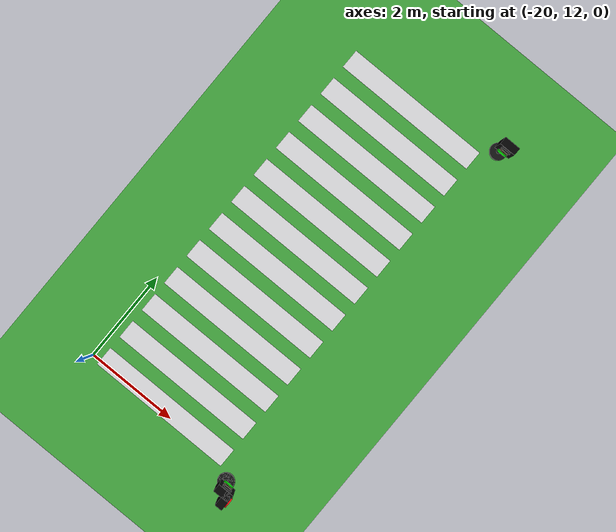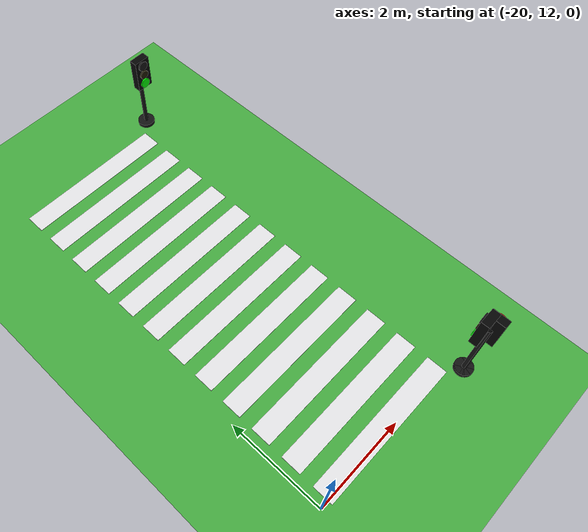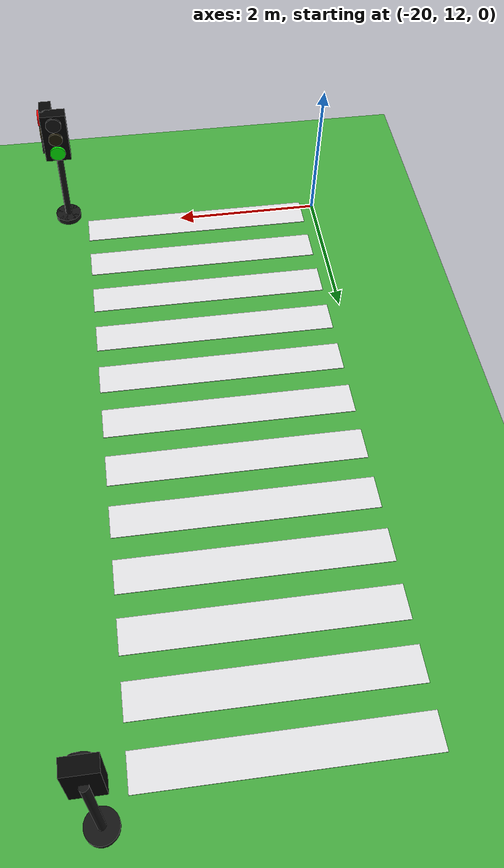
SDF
<sdf version="1.10">
 <world name="city_second">
  <model name="ground_plane">
   <static>true</static>
   <link name="link">
    <collision name="collision">
     <geometry><plane><normal>0 0 1</normal><size>300 300</size></plane></geometry>
    </collision>
    <visual name="visual">
     <geometry><plane><normal>0 0 1</normal><size>300 300</size></plane></geometry>
     <material>
      <ambient>0.280000001 0.689999998 0.25999999 1</ambient>
      <diffuse>0.280000001 0.689999998 0.25999999 1</diffuse>
      <specular>0.0299999993 0.0299999993 0.0299999993 1</specular>
     </material>
    </visual>
    <inertial>
     <mass>1</mass>
     <inertia><ixx>1</ixx><ixy>0</ixy><ixz>0</ixz><iyy>1</iyy><iyz>0</iyz><izz>1</izz></inertia>
    </inertial>
   </link>
  </model>
  <model name="crosswalk_v_2_1_east_5_1">
   <static>true</static>
   <pose>-18.222100000000001 15.9703 0.017000000000000001 0 0 0</pose>
   <link name="stripe_1">
    <collision name="collision">
     <geometry><box><size>3.2000000000000002 0.41999999999999998 0.01</size></box></geometry>
    </collision>
    <visual name="visual">
     <geometry><box><size>3.2000000000000002 0.41999999999999998 0.01</size></box></geometry>
     <material>
      <ambient>0.920000017 0.920000017 0.930000007 1</ambient>
      <diffuse>0.920000017 0.920000017 0.930000007 1</diffuse>
      <specular>0.0299999993 0.0299999993 0.0299999993 1</specular>
     </material>
    </visual>
    <pose>0 -3.8500000000000001 0 0 0 0</pose>
    <inertial>
     <mass>1</mass>
     <inertia><ixx>1</ixx><ixy>0</ixy><ixz>0</ixz><iyy>1</iyy><iyz>0</iyz><izz>1</izz></inertia>
    </inertial>
   </link>
   <link name="stripe_2">
    <collision name="collision">
     <geometry><box><size>3.2000000000000002 0.41999999999999998 0.01</size></box></geometry>
    </collision>
    <visual name="visual">
     <geometry><box><size>3.2000000000000002 0.41999999999999998 0.01</size></box></geometry>
     <material>
      <ambient>0.920000017 0.920000017 0.930000007 1</ambient>
      <diffuse>0.920000017 0.920000017 0.930000007 1</diffuse>
      <specular>0.0299999993 0.0299999993 0.0299999993 1</specular>
     </material>
    </visual>
    <pose>0 -3.1500000000000004 0 0 0 0</pose>
    <inertial>
     <mass>1</mass>
     <inertia><ixx>1</ixx><ixy>0</ixy><ixz>0</ixz><iyy>1</iyy><iyz>0</iyz><izz>1</izz></inertia>
    </inertial>
   </link>
   <link name="stripe_3">
    <collision name="collision">
     <geometry><box><size>3.2000000000000002 0.41999999999999998 0.01</size></box></geometry>
    </collision>
    <visual name="visual">
     <geometry><box><size>3.2000000000000002 0.41999999999999998 0.01</size></box></geometry>
     <material>
      <ambient>0.920000017 0.920000017 0.930000007 1</ambient>
      <diffuse>0.920000017 0.920000017 0.930000007 1</diffuse>
      <specular>0.0299999993 0.0299999993 0.0299999993 1</specular>
     </material>
    </visual>
    <pose>0 -2.4500000000000011 0 0 0 0</pose>
    <inertial>
     <mass>1</mass>
     <inertia><ixx>1</ixx><ixy>0</ixy><ixz>0</ixz><iyy>1</iyy><iyz>0</iyz><izz>1</izz></inertia>
    </inertial>
   </link>
   <link name="stripe_4">
    <collision name="collision">
     <geometry><box><size>3.2000000000000002 0.41999999999999998 0.01</size></box></geometry>
    </collision>
    <visual name="visual">
     <geometry><box><size>3.2000000000000002 0.41999999999999998 0.01</size></box></geometry>
     <material>
      <ambient>0.920000017 0.920000017 0.930000007 1</ambient>
      <diffuse>0.920000017 0.920000017 0.930000007 1</diffuse>
      <specular>0.0299999993 0.0299999993 0.0299999993 1</specular>
     </material>
    </visual>
    <pose>0 -1.75 0 0 0 0</pose>
    <inertial>
     <mass>1</mass>
     <inertia><ixx>1</ixx><ixy>0</ixy><ixz>0</ixz><iyy>1</iyy><iyz>0</iyz><izz>1</izz></inertia>
    </inertial>
   </link>
   <link name="stripe_5">
    <collision name="collision">
     <geometry><box><size>3.2000000000000002 0.41999999999999998 0.01</size></box></geometry>
    </collision>
    <visual name="visual">
     <geometry><box><size>3.2000000000000002 0.41999999999999998 0.01</size></box></geometry>
     <material>
      <ambient>0.920000017 0.920000017 0.930000007 1</ambient>
      <diffuse>0.920000017 0.920000017 0.930000007 1</diffuse>
      <specular>0.0299999993 0.0299999993 0.0299999993 1</specular>
     </material>
    </visual>
    <pose>0 -1.0500000000000007 0 0 0 0</pose>
    <inertial>
     <mass>1</mass>
     <inertia><ixx>1</ixx><ixy>0</ixy><ixz>0</ixz><iyy>1</iyy><iyz>0</iyz><izz>1</izz></inertia>
    </inertial>
   </link>
   <link name="stripe_6">
    <collision name="collision">
     <geometry><box><size>3.2000000000000002 0.41999999999999998 0.01</size></box></geometry>
    </collision>
    <visual name="visual">
     <geometry><box><size>3.2000000000000002 0.41999999999999998 0.01</size></box></geometry>
     <material>
      <ambient>0.920000017 0.920000017 0.930000007 1</ambient>
      <diffuse>0.920000017 0.920000017 0.930000007 1</diffuse>
      <specular>0.0299999993 0.0299999993 0.0299999993 1</specular>
     </material>
    </visual>
    <pose>0 -0.34999999999999964 0 0 0 0</pose>
    <inertial>
     <mass>1</mass>
     <inertia><ixx>1</ixx><ixy>0</ixy><ixz>0</ixz><iyy>1</iyy><iyz>0</iyz><izz>1</izz></inertia>
    </inertial>
   </link>
   <link name="stripe_7">
    <collision name="collision">
     <geometry><box><size>3.2000000000000002 0.41999999999999998 0.01</size></box></geometry>
    </collision>
    <visual name="visual">
     <geometry><box><size>3.2000000000000002 0.41999999999999998 0.01</size></box></geometry>
     <material>
      <ambient>0.920000017 0.920000017 0.930000007 1</ambient>
      <diffuse>0.920000017 0.920000017 0.930000007 1</diffuse>
      <specular>0.0299999993 0.0299999993 0.0299999993 1</specular>
     </material>
    </visual>
    <pose>0 0.34999999999999964 0 0 0 0</pose>
    <inertial>
     <mass>1</mass>
     <inertia><ixx>1</ixx><ixy>0</ixy><ixz>0</ixz><iyy>1</iyy><iyz>0</iyz><izz>1</izz></inertia>
    </inertial>
   </link>
   <link name="stripe_8">
    <collision name="collision">
     <geometry><box><size>3.2000000000000002 0.41999999999999998 0.01</size></box></geometry>
    </collision>
    <visual name="visual">
     <geometry><box><size>3.2000000000000002 0.41999999999999998 0.01</size></box></geometry>
     <material>
      <ambient>0.920000017 0.920000017 0.930000007 1</ambient>
      <diffuse>0.920000017 0.920000017 0.930000007 1</diffuse>
      <specular>0.0299999993 0.0299999993 0.0299999993 1</specular>
     </material>
    </visual>
    <pose>0 1.0499999999999989 0 0 0 0</pose>
    <inertial>
     <mass>1</mass>
     <inertia><ixx>1</ixx><ixy>0</ixy><ixz>0</ixz><iyy>1</iyy><iyz>0</iyz><izz>1</izz></inertia>
    </inertial>
   </link>
   <link name="stripe_9">
    <collision name="collision">
     <geometry><box><size>3.2000000000000002 0.41999999999999998 0.01</size></box></geometry>
    </collision>
    <visual name="visual">
     <geometry><box><size>3.2000000000000002 0.41999999999999998 0.01</size></box></geometry>
     <material>
      <ambient>0.920000017 0.920000017 0.930000007 1</ambient>
      <diffuse>0.920000017 0.920000017 0.930000007 1</diffuse>
      <specular>0.0299999993 0.0299999993 0.0299999993 1</specular>
     </material>
    </visual>
    <pose>0 1.7500000000000018 0 0 0 0</pose>
    <inertial>
     <mass>1</mass>
     <inertia><ixx>1</ixx><ixy>0</ixy><ixz>0</ixz><iyy>1</iyy><iyz>0</iyz><izz>1</izz></inertia>
    </inertial>
   </link>
   <link name="stripe_10">
    <collision name="collision">
     <geometry><box><size>3.2000000000000002 0.41999999999999998 0.01</size></box></geometry>
    </collision>
    <visual name="visual">
     <geometry><box><size>3.2000000000000002 0.41999999999999998 0.01</size></box></geometry>
     <material>
      <ambient>0.920000017 0.920000017 0.930000007 1</ambient>
      <diffuse>0.920000017 0.920000017 0.930000007 1</diffuse>
      <specular>0.0299999993 0.0299999993 0.0299999993 1</specular>
     </material>
    </visual>
    <pose>0 2.4500000000000011 0 0 0 0</pose>
    <inertial>
     <mass>1</mass>
     <inertia><ixx>1</ixx><ixy>0</ixy><ixz>0</ixz><iyy>1</iyy><iyz>0</iyz><izz>1</izz></inertia>
    </inertial>
   </link>
   <link name="stripe_11">
    <collision name="collision">
     <geometry><box><size>3.2000000000000002 0.41999999999999998 0.01</size></box></geometry>
    </collision>
    <visual name="visual">
     <geometry><box><size>3.2000000000000002 0.41999999999999998 0.01</size></box></geometry>
     <material>
      <ambient>0.920000017 0.920000017 0.930000007 1</ambient>
      <diffuse>0.920000017 0.920000017 0.930000007 1</diffuse>
      <specular>0.0299999993 0.0299999993 0.0299999993 1</specular>
     </material>
    </visual>
    <pose>0 3.1500000000000004 0 0 0 0</pose>
    <inertial>
     <mass>1</mass>
     <inertia><ixx>1</ixx><ixy>0</ixy><ixz>0</ixz><iyy>1</iyy><iyz>0</iyz><izz>1</izz></inertia>
    </inertial>
   </link>
   <link name="stripe_12">
    <collision name="collision">
     <geometry><box><size>3.2000000000000002 0.41999999999999998 0.01</size></box></geometry>
    </collision>
    <visual name="visual">
     <geometry><box><size>3.2000000000000002 0.41999999999999998 0.01</size></box></geometry>
     <material>
      <ambient>0.920000017 0.920000017 0.930000007 1</ambient>
      <diffuse>0.920000017 0.920000017 0.930000007 1</diffuse>
      <specular>0.0299999993 0.0299999993 0.0299999993 1</specular>
     </material>
    </visual>
    <pose>0 3.8499999999999996 0 0 0 0</pose>
    <inertial>
     <mass>1</mass>
     <inertia><ixx>1</ixx><ixy>0</ixy><ixz>0</ixz><iyy>1</iyy><iyz>0</iyz><izz>1</izz></inertia>
    </inertial>
   </link>
  </model>
  <model name="simple_traffic_light_green_south_1_3_1">
   <static>true</static>
   <pose>-16.354454184301069 20.279661688850851 0 0 0 -3.1415900000000754</pose>
   <link name="base">
    <pose>0 0 0.040000000000000001 0 0 0</pose>
    <collision name="collision">
     <geometry>
      <cylinder><radius>0.17999999999999999</radius><length>0.080000000000000002</length></cylinder>
     </geometry>
    </collision>
    <visual name="visual">
     <geometry>
      <cylinder><radius>0.17999999999999999</radius><length>0.080000000000000002</length></cylinder>
     </geometry>
     <material>
      <ambient>0.0799999982 0.0799999982 0.0799999982 1</ambient>
      <diffuse>0.0799999982 0.0799999982 0.0799999982 1</diffuse>
      <specular>0.150000006 0.150000006 0.150000006 1</specular>
      <emissive>0 0 0 1</emissive>
     </material>
    </visual>
    <inertial>
     <mass>1</mass>
     <inertia><ixx>1</ixx><ixy>0</ixy><ixz>0</ixz><iyy>1</iyy><iyz>0</iyz><izz>1</izz></inertia>
    </inertial>
   </link>
   <link name="pole">
    <pose>2.4868995751603507e-14 2.4868995751603507e-14 0.80000000000000082 0 0 0</pose>
    <collision name="collision">
     <geometry>
      <cylinder><radius>0.044999999999999998</radius><length>1.6000000000000001</length></cylinder>
     </geometry>
    </collision>
    <visual name="visual">
     <geometry>
      <cylinder><radius>0.044999999999999998</radius><length>1.6000000000000001</length></cylinder>
     </geometry>
     <material>
      <ambient>0.0799999982 0.0799999982 0.0799999982 1</ambient>
      <diffuse>0.0799999982 0.0799999982 0.0799999982 1</diffuse>
      <specular>0.150000006 0.150000006 0.150000006 1</specular>
      <emissive>0 0 0 1</emissive>
     </material>
    </visual>
    <inertial>
     <mass>1</mass>
     <inertia><ixx>1</ixx><ixy>0</ixy><ixz>0</ixz><iyy>1</iyy><iyz>0</iyz><izz>1</izz></inertia>
    </inertial>
   </link>
   <link name="signal_box">
    <pose>2.4868995751603507e-14 0.090000000000024727 1.5500000000000016 0 0 0</pose>
    <collision name="collision">
     <geometry><box><size>0.34000000000000002 0.16 0.71999999999999997</size></box></geometry>
    </collision>
    <visual name="visual">
     <geometry><box><size>0.34000000000000002 0.16 0.71999999999999997</size></box></geometry>
     <material>
      <ambient>0.0199999996 0.0199999996 0.0199999996 1</ambient>
      <diffuse>0.0199999996 0.0199999996 0.0199999996 1</diffuse>
      <specular>0.150000006 0.150000006 0.150000006 1</specular>
      <emissive>0 0 0 1</emissive>
     </material>
    </visual>
    <inertial>
     <mass>1</mass>
     <inertia><ixx>1</ixx><ixy>0</ixy><ixz>0</ixz><iyy>1</iyy><iyz>0</iyz><izz>1</izz></inertia>
    </inertial>
   </link>
   <link name="red_lens">
    <pose>2.4868995751603507e-14 0.18099999999999739 1.78 1.5707963267999998 1.2475048931562623e-16 -1.2475078878636004e-16</pose>
    <collision name="collision">
     <geometry><cylinder><radius>0.105</radius><length>0.035000000000000003</length></cylinder></geometry>
    </collision>
    <visual name="visual">
     <geometry><cylinder><radius>0.105</radius><length>0.035000000000000003</length></cylinder></geometry>
     <material>
      <ambient>0.0799999982 0.0799999982 0.0799999982 1</ambient>
      <diffuse>0.0799999982 0.0799999982 0.0799999982 1</diffuse>
      <specular>0.150000006 0.150000006 0.150000006 1</specular>
      <emissive>0 0 0 1</emissive>
     </material>
    </visual>
    <inertial>
     <mass>1</mass>
     <inertia><ixx>1</ixx><ixy>0</ixy><ixz>0</ixz><iyy>1</iyy><iyz>0</iyz><izz>1</izz></inertia>
    </inertial>
   </link>
   <link name="yellow_lens">
    <pose>0 0.18200000000002348 1.5500000000000016 1.5707963267999998 1.2475048931562623e-16 -1.2475078878636004e-16</pose>
    <collision name="collision">
     <geometry>
      <cylinder><radius>0.095000000000000001</radius><length>0.035000000000000003</length></cylinder>
     </geometry>
    </collision>
    <visual name="visual">
     <geometry>
      <cylinder><radius>0.095000000000000001</radius><length>0.035000000000000003</length></cylinder>
     </geometry>
     <material>
      <ambient>0.119999997 0.100000001 0.0199999996 1</ambient>
      <diffuse>0.119999997 0.100000001 0.0199999996 1</diffuse>
      <specular>0.150000006 0.150000006 0.150000006 1</specular>
      <emissive>0 0 0 1</emissive>
     </material>
    </visual>
    <inertial>
     <mass>1</mass>
     <inertia><ixx>1</ixx><ixy>0</ixy><ixz>0</ixz><iyy>1</iyy><iyz>0</iyz><izz>1</izz></inertia>
    </inertial>
   </link>
   <link name="green_lens">
    <pose>2.4868995751603507e-14 0.1830000000000247 1.3200000000000016 1.5707963267999998 1.2475048931562623e-16 -1.2475078878636004e-16</pose>
    <collision name="collision">
     <geometry><cylinder><radius>0.105</radius><length>0.035000000000000003</length></cylinder></geometry>
    </collision>
    <visual name="visual">
     <geometry><cylinder><radius>0.105</radius><length>0.035000000000000003</length></cylinder></geometry>
     <material>
      <ambient>0.0199999996 1 0.0199999996 1</ambient>
      <diffuse>0.0199999996 1 0.0199999996 1</diffuse>
      <specular>0.150000006 0.150000006 0.150000006 1</specular>
      <emissive>0.0199999996 1 0.0199999996 1</emissive>
     </material>
    </visual>
    <inertial>
     <mass>1</mass>
     <inertia><ixx>1</ixx><ixy>0</ixy><ixz>0</ixz><iyy>1</iyy><iyz>0</iyz><izz>1</izz></inertia>
    </inertial>
   </link>
  </model>
  <model name="simple_traffic_light_green_north_1_2_2">
   <static>true</static>
   <pose>-16.344982830740257 11.749732074179992 0 0 0 0</pose>
   <link name="base">
    <pose>0 0 0.040000000000000001 0 0 0</pose>
    <collision name="collision">
     <geometry>
      <cylinder><radius>0.17999999999999999</radius><length>0.080000000000000002</length></cylinder>
     </geometry>
    </collision>
    <visual name="visual">
     <geometry>
      <cylinder><radius>0.17999999999999999</radius><length>0.080000000000000002</length></cylinder>
     </geometry>
     <material>
      <ambient>0.0799999982 0.0799999982 0.0799999982 1</ambient>
      <diffuse>0.0799999982 0.0799999982 0.0799999982 1</diffuse>
      <specular>0.150000006 0.150000006 0.150000006 1</specular>
      <emissive>0 0 0 1</emissive>
     </material>
    </visual>
    <inertial>
     <mass>1</mass>
     <inertia><ixx>1</ixx><ixy>0</ixy><ixz>0</ixz><iyy>1</iyy><iyz>0</iyz><izz>1</izz></inertia>
    </inertial>
   </link>
   <link name="pole">
    <pose>0 0 0.80000000000000004 0 0 0</pose>
    <collision name="collision">
     <geometry>
      <cylinder><radius>0.044999999999999998</radius><length>1.6000000000000001</length></cylinder>
     </geometry>
    </collision>
    <visual name="visual">
     <geometry>
      <cylinder><radius>0.044999999999999998</radius><length>1.6000000000000001</length></cylinder>
     </geometry>
     <material>
      <ambient>0.0799999982 0.0799999982 0.0799999982 1</ambient>
      <diffuse>0.0799999982 0.0799999982 0.0799999982 1</diffuse>
      <specular>0.150000006 0.150000006 0.150000006 1</specular>
      <emissive>0 0 0 1</emissive>
     </material>
    </visual>
    <inertial>
     <mass>1</mass>
     <inertia><ixx>1</ixx><ixy>0</ixy><ixz>0</ixz><iyy>1</iyy><iyz>0</iyz><izz>1</izz></inertia>
    </inertial>
   </link>
   <link name="signal_box">
    <pose>0 0.089999999999999858 1.55 0 0 0</pose>
    <collision name="collision">
     <geometry><box><size>0.34000000000000002 0.16 0.71999999999999997</size></box></geometry>
    </collision>
    <visual name="visual">
     <geometry><box><size>0.34000000000000002 0.16 0.71999999999999997</size></box></geometry>
     <material>
      <ambient>0.0199999996 0.0199999996 0.0199999996 1</ambient>
      <diffuse>0.0199999996 0.0199999996 0.0199999996 1</diffuse>
      <specular>0.150000006 0.150000006 0.150000006 1</specular>
      <emissive>0 0 0 1</emissive>
     </material>
    </visual>
    <inertial>
     <mass>1</mass>
     <inertia><ixx>1</ixx><ixy>0</ixy><ixz>0</ixz><iyy>1</iyy><iyz>0</iyz><izz>1</izz></inertia>
    </inertial>
   </link>
   <link name="red_lens">
    <pose>0 0.18099999999999916 1.78 1.5707963268000003 0 0</pose>
    <collision name="collision">
     <geometry><cylinder><radius>0.105</radius><length>0.035000000000000003</length></cylinder></geometry>
    </collision>
    <visual name="visual">
     <geometry><cylinder><radius>0.105</radius><length>0.035000000000000003</length></cylinder></geometry>
     <material>
      <ambient>0.0799999982 0.0799999982 0.0799999982 1</ambient>
      <diffuse>0.0799999982 0.0799999982 0.0799999982 1</diffuse>
      <specular>0.150000006 0.150000006 0.150000006 1</specular>
      <emissive>0 0 0 1</emissive>
     </material>
    </visual>
    <inertial>
     <mass>1</mass>
     <inertia><ixx>1</ixx><ixy>0</ixy><ixz>0</ixz><iyy>1</iyy><iyz>0</iyz><izz>1</izz></inertia>
    </inertial>
   </link>
   <link name="yellow_lens">
    <pose>0 0.18200000000000038 1.55 1.5707963268000003 0 0</pose>
    <collision name="collision">
     <geometry>
      <cylinder><radius>0.095000000000000001</radius><length>0.035000000000000003</length></cylinder>
     </geometry>
    </collision>
    <visual name="visual">
     <geometry>
      <cylinder><radius>0.095000000000000001</radius><length>0.035000000000000003</length></cylinder>
     </geometry>
     <material>
      <ambient>0.119999997 0.100000001 0.0199999996 1</ambient>
      <diffuse>0.119999997 0.100000001 0.0199999996 1</diffuse>
      <specular>0.150000006 0.150000006 0.150000006 1</specular>
      <emissive>0 0 0 1</emissive>
     </material>
    </visual>
    <inertial>
     <mass>1</mass>
     <inertia><ixx>1</ixx><ixy>0</ixy><ixz>0</ixz><iyy>1</iyy><iyz>0</iyz><izz>1</izz></inertia>
    </inertial>
   </link>
   <link name="green_lens">
    <pose>0 0.18299999999999983 1.3200000000000001 1.5707963268000003 0 0</pose>
    <collision name="collision">
     <geometry><cylinder><radius>0.105</radius><length>0.035000000000000003</length></cylinder></geometry>
    </collision>
    <visual name="visual">
     <geometry><cylinder><radius>0.105</radius><length>0.035000000000000003</length></cylinder></geometry>
     <material>
      <ambient>0.0199999996 1 0.0199999996 1</ambient>
      <diffuse>0.0199999996 1 0.0199999996 1</diffuse>
      <specular>0.150000006 0.150000006 0.150000006 1</specular>
      <emissive>0.0199999996 1 0.0199999996 1</emissive>
     </material>
    </visual>
    <inertial>
     <mass>1</mass>
     <inertia><ixx>1</ixx><ixy>0</ixy><ixz>0</ixz><iyy>1</iyy><iyz>0</iyz><izz>1</izz></inertia>
    </inertial>
   </link>
  </model>
  <model name="simple_traffic_light_red_east_5">
   <static>true</static>
   <pose>-16.341755595436247 11.74528513419834 -2.7755575615628914e-17 0 0 -1.5707999672671742</pose>
   <link name="base">
    <pose>0 0 0.040000000000000001 0 0 0</pose>
    <collision name="collision">
     <geometry>
      <cylinder><radius>0.17999999999999999</radius><length>0.080000000000000002</length></cylinder>
     </geometry>
    </collision>
    <visual name="visual">
     <geometry>
      <cylinder><radius>0.17999999999999999</radius><length>0.080000000000000002</length></cylinder>
     </geometry>
     <material>
      <ambient>0.0799999982 0.0799999982 0.0799999982 1</ambient>
      <diffuse>0.0799999982 0.0799999982 0.0799999982 1</diffuse>
      <specular>0.150000006 0.150000006 0.150000006 1</specular>
      <emissive>0 0 0 1</emissive>
     </material>
    </visual>
    <inertial>
     <mass>1</mass>
     <inertia><ixx>1</ixx><ixy>0</ixy><ixz>0</ixz><iyy>1</iyy><iyz>0</iyz><izz>1</izz></inertia>
    </inertial>
   </link>
   <link name="pole">
    <pose>-1.7763568394002505e-14 -2.1316282072803006e-14 0.80000000000000004 0 0 -6.6613381477509392e-16</pose>
    <collision name="collision">
     <geometry>
      <cylinder><radius>0.044999999999999998</radius><length>1.6000000000000001</length></cylinder>
     </geometry>
    </collision>
    <visual name="visual">
     <geometry>
      <cylinder><radius>0.044999999999999998</radius><length>1.6000000000000001</length></cylinder>
     </geometry>
     <material>
      <ambient>0.0799999982 0.0799999982 0.0799999982 1</ambient>
      <diffuse>0.0799999982 0.0799999982 0.0799999982 1</diffuse>
      <specular>0.150000006 0.150000006 0.150000006 1</specular>
      <emissive>0 0 0 1</emissive>
     </material>
    </visual>
    <inertial>
     <mass>1</mass>
     <inertia><ixx>1</ixx><ixy>0</ixy><ixz>0</ixz><iyy>1</iyy><iyz>0</iyz><izz>1</izz></inertia>
    </inertial>
   </link>
   <link name="signal_box">
    <pose>0 0.089999999999971436 1.5500000000000003 0 0 -6.6613381477509392e-16</pose>
    <collision name="collision">
     <geometry><box><size>0.34000000000000002 0.16 0.71999999999999997</size></box></geometry>
    </collision>
    <visual name="visual">
     <geometry><box><size>0.34000000000000002 0.16 0.71999999999999997</size></box></geometry>
     <material>
      <ambient>0.0199999996 0.0199999996 0.0199999996 1</ambient>
      <diffuse>0.0199999996 0.0199999996 0.0199999996 1</diffuse>
      <specular>0.150000006 0.150000006 0.150000006 1</specular>
      <emissive>0 0 0 1</emissive>
     </material>
    </visual>
    <inertial>
     <mass>1</mass>
     <inertia><ixx>1</ixx><ixy>0</ixy><ixz>0</ixz><iyy>1</iyy><iyz>0</iyz><izz>1</izz></inertia>
    </inertial>
   </link>
   <link name="red_lens">
    <pose>-2.1316282072803006e-14 0.18099999999996541 1.7800000000000002 1.5707963267999998 -2.3551386881478525e-16 4.7887819989849136e-15</pose>
    <collision name="collision">
     <geometry><cylinder><radius>0.105</radius><length>0.035000000000000003</length></cylinder></geometry>
    </collision>
    <visual name="visual">
     <geometry><cylinder><radius>0.105</radius><length>0.035000000000000003</length></cylinder></geometry>
     <material>
      <ambient>1 0.0199999996 0.0199999996 1</ambient>
      <diffuse>1 0.0199999996 0.0199999996 1</diffuse>
      <specular>0.150000006 0.150000006 0.150000006 1</specular>
      <emissive>1 0.0199999996 0.0199999996 1</emissive>
     </material>
    </visual>
    <inertial>
     <mass>1</mass>
     <inertia><ixx>1</ixx><ixy>0</ixy><ixz>0</ixz><iyy>1</iyy><iyz>0</iyz><izz>1</izz></inertia>
    </inertial>
   </link>
   <link name="yellow_lens">
    <pose>-2.6645352591003757e-14 0.18199999999998795 1.5500000000000003 1.5707963267999998 -2.3551386881478525e-16 4.7887819989849136e-15</pose>
    <collision name="collision">
     <geometry>
      <cylinder><radius>0.095000000000000001</radius><length>0.035000000000000003</length></cylinder>
     </geometry>
    </collision>
    <visual name="visual">
     <geometry>
      <cylinder><radius>0.095000000000000001</radius><length>0.035000000000000003</length></cylinder>
     </geometry>
     <material>
      <ambient>0.119999997 0.100000001 0.0199999996 1</ambient>
      <diffuse>0.119999997 0.100000001 0.0199999996 1</diffuse>
      <specular>0.150000006 0.150000006 0.150000006 1</specular>
      <emissive>0 0 0 1</emissive>
     </material>
    </visual>
    <inertial>
     <mass>1</mass>
     <inertia><ixx>1</ixx><ixy>0</ixy><ixz>0</ixz><iyy>1</iyy><iyz>0</iyz><izz>1</izz></inertia>
    </inertial>
   </link>
   <link name="green_lens">
    <pose>-1.0658141036401503e-14 0.18299999999998917 1.3199999999999998 1.5707963267999998 -2.3551386881478525e-16 4.7887819989849136e-15</pose>
    <collision name="collision">
     <geometry><cylinder><radius>0.105</radius><length>0.035000000000000003</length></cylinder></geometry>
    </collision>
    <visual name="visual">
     <geometry><cylinder><radius>0.105</radius><length>0.035000000000000003</length></cylinder></geometry>
     <material>
      <ambient>0.0799999982 0.0799999982 0.0799999982 1</ambient>
      <diffuse>0.0799999982 0.0799999982 0.0799999982 1</diffuse>
      <specular>0.150000006 0.150000006 0.150000006 1</specular>
      <emissive>0 0 0 1</emissive>
     </material>
    </visual>
    <inertial>
     <mass>1</mass>
     <inertia><ixx>1</ixx><ixy>0</ixy><ixz>0</ixz><iyy>1</iyy><iyz>0</iyz><izz>1</izz></inertia>
    </inertial>
   </link>
  </model>
 </world>
</sdf>
